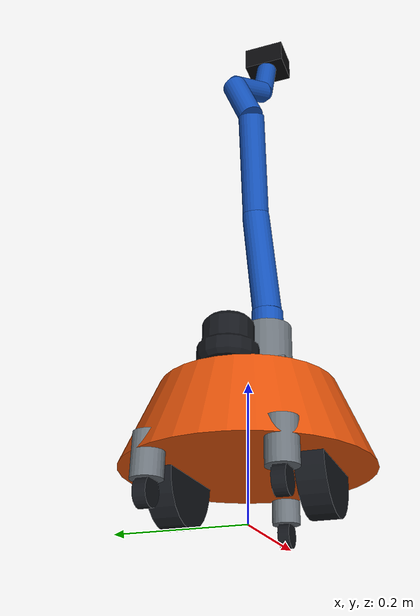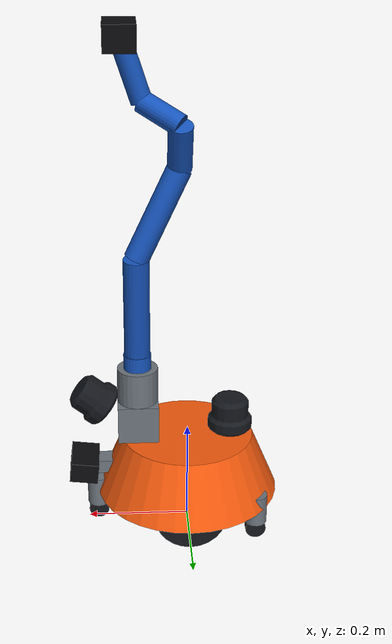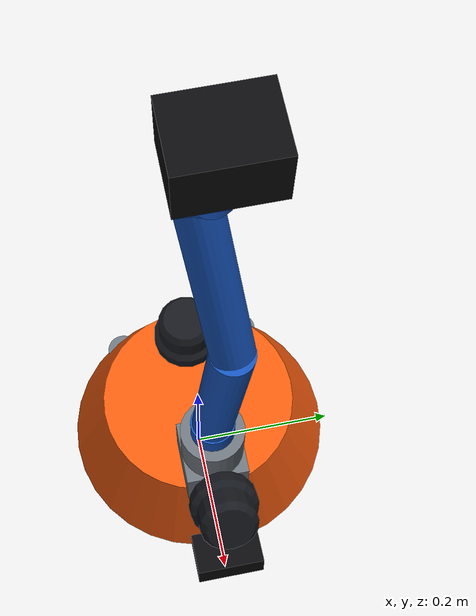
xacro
<?xml version="1.0"?>
<robot name="jvs_mock" xmlns:xacro="http://www.ros.org/wiki/xacro">
  <xacro:arg name="controllers_file" default="$(find jvs_mock)/config/jarvis_controllers.yaml"/>
  <xacro:arg name="sim_backend" default="gazebo"/>
  <xacro:arg name="lidar_mode" default="both"/>
  <xacro:property name="arm_mass_scale" value="0.6"/>
  <xacro:property name="base_height" value="0.12"/>
  <xacro:property name="base_top_radius" value="0.13"/>
  <xacro:property name="base_bottom_radius" value="0.18"/>
  <xacro:include filename="$(find jvs_mock)/urdf/materials.xacro"/>
  <xacro:include filename="$(find jvs_mock)/urdf/ros2_control.xacro"/>
  <xacro:include filename="$(find jvs_mock)/urdf/gazebo.xacro"/>

  <!-- Base origin is on the ground plane. The top keeps the target 0.13 m
       radius, while the wider lower edge overlaps all three caster posts. -->
  <link name="base_link">
    <xacro:frustum_body bottom_radius="${base_bottom_radius}"
      top_radius="${base_top_radius}" length="${base_height}" mass="31.772322"
      origin_z="0.13" mesh_filename="$(find jvs_mock)/meshes/base_frustum.stl"
      material="jvs_orange"/>
  </link>

  <link name="left_wheel_link">
    <xacro:cylinder_body radius="0.07" length="0.04" mass="0.35"
      origin_xyz="0 0 0" origin_rpy="1.57079632679 0 0" material="jvs_dark"/>
  </link>
  <joint name="left_wheel_joint" type="continuous">
    <parent link="base_link"/><child link="left_wheel_link"/>
    <origin xyz="0 0.105 0.070" rpy="0 0 0"/>
    <axis xyz="0 1 0"/>
    <limit effort="20.0" velocity="15.0"/>
    <dynamics damping="0.02" friction="0.01"/>
  </joint>

  <link name="right_wheel_link">
    <xacro:cylinder_body radius="0.07" length="0.04" mass="0.35"
      origin_xyz="0 0 0" origin_rpy="1.57079632679 0 0" material="jvs_dark"/>
  </link>
  <joint name="right_wheel_joint" type="continuous">
    <parent link="base_link"/><child link="right_wheel_link"/>
    <origin xyz="0 -0.105 0.070" rpy="0 0 0"/>
    <axis xyz="0 1 0"/>
    <limit effort="20.0" velocity="15.0"/>
    <dynamics damping="0.02" friction="0.01"/>
  </joint>

  <xacro:macro name="passive_caster" params="name x y">
    <link name="${name}_swivel_link">
      <xacro:cylinder_body radius="0.022" length="0.06" mass="0.04"
        origin_xyz="0 0 0.01" origin_rpy="0 0 0" material="jvs_gray"/>
    </link>
    <joint name="${name}_swivel_joint" type="continuous">
      <parent link="base_link"/><child link="${name}_swivel_link"/>
      <origin xyz="${x} ${y} 0.055" rpy="0 0 0"/>
      <axis xyz="0 0 1"/>
      <limit effort="0.2" velocity="20.0"/>
      <dynamics damping="0.01" friction="0.002"/>
    </joint>
    <link name="${name}_wheel_link">
      <xacro:cylinder_body radius="0.02" length="0.018" mass="0.08"
        origin_xyz="0 0 0" origin_rpy="1.57079632679 0 0" material="jvs_dark"/>
    </link>
    <joint name="${name}_wheel_joint" type="continuous">
      <parent link="${name}_swivel_link"/><child link="${name}_wheel_link"/>
      <origin xyz="0 0 -0.035" rpy="0 0 0"/>
      <axis xyz="0 1 0"/>
      <limit effort="0.2" velocity="50.0"/>
      <dynamics damping="0.002" friction="0.001"/>
    </joint>
    <xacro:if value="${'$(arg sim_backend)' == 'gazebo'}">
      <gazebo reference="${name}_wheel_link">
        <mu1>0.02</mu1><mu2>0.02</mu2>
      </gazebo>
    </xacro:if>
  </xacro:macro>
  <xacro:passive_caster name="front_caster" x="0.180" y="0"/>
  <xacro:passive_caster name="rear_left_caster" x="-0.131" y="0.089"/>
  <xacro:passive_caster name="rear_right_caster" x="-0.131" y="-0.089"/>

  <!-- Bridge the chassis top (0.19) to the unchanged neck origin (0.266). -->
  <link name="arm_pedestal_link">
    <xacro:box_body size_x="0.080" size_y="0.080" size_z="0.076" mass="0.35"
      origin_xyz="0 0 0" origin_rpy="0 0 0" material="jvs_gray"/>
  </link>
  <joint name="arm_pedestal_joint" type="fixed">
    <parent link="base_link"/><child link="arm_pedestal_link"/>
    <origin xyz="0.098 0 0.228" rpy="0 0 0"/>
  </joint>

  <!-- Support the body camera without changing its calibrated frame. -->
  <link name="rgbd_mount_link">
    <xacro:box_body size_x="0.072" size_y="0.040" size_z="0.026" mass="0.06"
      origin_xyz="0 0 0" origin_rpy="0 0 0" material="jvs_gray"/>
  </link>
  <joint name="rgbd_mount_joint" type="fixed">
    <parent link="base_link"/><child link="rgbd_mount_link"/>
    <origin xyz="0.156 0 0.125" rpy="0 0 0"/>
  </joint>

  <link name="lidar_link">
    <visual>
      <origin xyz="0 0 0" rpy="0 0 0"/>
      <geometry>
        <!-- The local STL is authored in millimetres. -->
        <mesh filename="$(find jvs_mock)/meshes/jarvis_lidar.stl"
          scale="0.001 0.001 0.001"/>
      </geometry>
      <material name="jvs_dark"/>
    </visual>
  </link>
  <joint name="lidar_joint" type="fixed">
    <parent link="base_link"/><child link="lidar_link"/>
    <origin xyz="-0.085 0 0.235" rpy="0 0 0"/>
  </joint>

  <!-- Restore the original front sensor extrinsic; keep the rear TF/topic
       unchanged for existing consumers. Both sensors have distinct frames. -->
  <link name="front_lidar_link">
    <visual>
      <origin xyz="0 0 0" rpy="0 0 0"/>
      <geometry>
        <mesh filename="$(find jvs_mock)/meshes/jarvis_lidar.stl"
          scale="0.001 0.001 0.001"/>
      </geometry>
      <material name="jvs_dark"/>
    </visual>
  </link>
  <joint name="front_lidar_joint" type="fixed">
    <parent link="base_link"/><child link="front_lidar_link"/>
    <origin xyz="0.190 0 0.274" rpy="0 0.898844565 0"/>
  </joint>

  <!-- Neck mounting and six revolute joints. Joint rpy values are all zero. -->
  <link name="neck_base_link">
    <xacro:cylinder_body radius="0.04" length="0.07" mass="${0.30 * arm_mass_scale}"
      origin_xyz="0 0 0.035" origin_rpy="0 0 0" material="jvs_gray"/>
  </link>
  <joint name="neck_base_joint" type="fixed">
    <parent link="base_link"/><child link="neck_base_link"/>
    <origin xyz="0.098 0 0.266" rpy="0 0 0"/>
  </joint>

  <link name="link1">
    <xacro:cylinder_body radius="0.027" length="0.10" mass="${0.28 * arm_mass_scale}"
      origin_xyz="0 0 0.05" origin_rpy="0 0 0" material="jvs_blue"/>
  </link>
  <joint name="joint1" type="revolute">
    <parent link="neck_base_link"/><child link="link1"/>
    <origin xyz="0 0 0" rpy="0 0 0"/><axis xyz="0 0 1"/>
    <limit lower="-1.3962634016" upper="1.3962634016" effort="10.0" velocity="1.0"/>
    <dynamics damping="0.15" friction="0.02"/>
  </joint>

  <link name="link2">
    <xacro:cylinder_body radius="0.025" length="0.205218" mass="${0.35 * arm_mass_scale}"
      origin_xyz="0 0.00975 0.102145" origin_rpy="0 0.0952 1.57079632679" material="jvs_blue"/>
  </link>
  <joint name="joint2" type="revolute">
    <parent link="link1"/><child link="link2"/>
    <origin xyz="0 0 0.10" rpy="0 0 0"/><axis xyz="0 1 0"/>
    <limit lower="-1.18682389136" upper="0.698131700798" effort="10.0" velocity="1.0"/>
    <dynamics damping="0.15" friction="0.02"/>
  </joint>

  <link name="link3">
    <xacro:cylinder_body radius="0.024" length="0.188000" mass="${0.32 * arm_mass_scale}"
      origin_xyz="-0.041 -0.010 0.084" origin_rpy="0 0.465 -2.902" material="jvs_blue"/>
  </link>
  <joint name="joint3" type="revolute">
    <parent link="link2"/><child link="link3"/>
    <origin xyz="0 0.0195 0.20429" rpy="0 0 0"/><axis xyz="0 1 0"/>
    <limit lower="-0.523598775598" upper="2.61799387799" effort="10.0" velocity="1.0"/>
    <dynamics damping="0.15" friction="0.02"/>
  </joint>

  <link name="link4">
    <xacro:cylinder_body radius="0.023" length="0.094340" mass="${0.24 * arm_mass_scale}"
      origin_xyz="0 0.017 0.044" origin_rpy="0 0.369 1.57079632679" material="jvs_blue"/>
  </link>
  <joint name="joint4" type="revolute">
    <parent link="link3"/><child link="link4"/>
    <origin xyz="-0.082 -0.020 0.168" rpy="0 0 0"/><axis xyz="0 0 1"/>
    <limit lower="-1.57079632679" upper="1.57079632679" effort="8.0" velocity="1.2"/>
    <dynamics damping="0.12" friction="0.02"/>
  </joint>

  <link name="link5">
    <xacro:cylinder_body radius="0.021" length="0.084528" mass="${0.50 * arm_mass_scale}"
      origin_xyz="0.034 -0.0175 0.018" origin_rpy="0 1.130847 -0.475343" material="jvs_blue"/>
  </link>
  <joint name="joint5" type="revolute">
    <parent link="link4"/><child link="link5"/>
    <origin xyz="0 0.034 0.088" rpy="0 0 0"/><axis xyz="0 1 0"/>
    <limit lower="-2.61799387799" upper="0.03490658504" effort="8.0" velocity="1.2"/>
    <dynamics damping="0.12" friction="0.02"/>
  </joint>

  <link name="link6">
    <xacro:cylinder_body radius="0.020" length="0.122540" mass="${0.18 * arm_mass_scale}"
      origin_xyz="0.019 0 0.05825" origin_rpy="0 0.315 0" material="jvs_blue"/>
  </link>
  <joint name="joint6" type="revolute">
    <parent link="link5"/><child link="link6"/>
    <origin xyz="0.068 -0.035 0.036" rpy="0 0 0"/><axis xyz="0 0 1"/>
    <limit lower="-0.698131700798" upper="0.698131700798" effort="6.0" velocity="1.5"/>
    <dynamics damping="0.10" friction="0.01"/>
  </joint>

  <!-- Head camera and REP-103 optical frame (z forward, x right, y down). -->
  <link name="camera_link">
    <xacro:box_body size_x="0.060" size_y="0.080" size_z="0.050" mass="0.12"
      origin_xyz="0 0 0" origin_rpy="0 0 0" material="jvs_camera"/>
  </link>
  <joint name="camera_joint" type="fixed">
    <parent link="link6"/><child link="camera_link"/>
    <origin xyz="0.038 0 0.1165" rpy="0 0 0"/>
  </joint>
  <link name="camera_optical_frame"/>
  <joint name="camera_optical_joint" type="fixed">
    <parent link="camera_link"/><child link="camera_optical_frame"/>
    <origin xyz="0.02 0 0" rpy="-1.57079632679 0 -1.57079632679"/>
  </joint>

  <!-- Independent body-mounted RGBD camera. -->
  <link name="rgbd_link">
    <xacro:box_body size_x="0.055" size_y="0.090" size_z="0.040" mass="0.14"
      origin_xyz="0 0 0" origin_rpy="0 0 0" material="jvs_camera"/>
  </link>
  <joint name="rgbd_joint_fixed" type="fixed">
    <parent link="base_link"/><child link="rgbd_link"/>
    <origin xyz="0.207 0 0.125" rpy="0 -0.118464 0"/>
  </joint>
  <link name="rgbd_optical_frame"/>
  <joint name="rgbd_optical_joint" type="fixed">
    <parent link="rgbd_link"/><child link="rgbd_optical_frame"/>
    <origin xyz="0 0 0" rpy="-1.57079632679 0 -1.57079632679"/>
  </joint>

  <xacro:if value="${'$(arg sim_backend)' == 'gazebo'}">
    <xacro:jvs_ros2_control/>
    <xacro:jvs_gazebo controllers_file="$(arg controllers_file)"/>
  </xacro:if>
</robot>

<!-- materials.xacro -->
<robot xmlns:xacro="http://www.ros.org/wiki/xacro">
  <material name="jvs_orange"><color rgba="0.95 0.35 0.05 1.0"/></material>
  <material name="jvs_dark"><color rgba="0.08 0.09 0.11 1.0"/></material>
  <material name="jvs_gray"><color rgba="0.42 0.45 0.48 1.0"/></material>
  <material name="jvs_blue"><color rgba="0.08 0.32 0.72 1.0"/></material>
  <material name="jvs_camera"><color rgba="0.04 0.04 0.05 1.0"/></material>

  <!-- Most links use primitives; the tapered base uses one local convex STL. -->
  <xacro:macro name="frustum_body"
    params="bottom_radius top_radius length mass origin_z mesh_filename material">
    <!-- Exact centroid and principal inertias for a uniform solid conical frustum. -->
    <xacro:property name="frustum_s"
      value="${bottom_radius * bottom_radius + bottom_radius * top_radius + top_radius * top_radius}"/>
    <xacro:property name="frustum_q"
      value="${bottom_radius**4 + bottom_radius**3 * top_radius + bottom_radius**2 * top_radius**2 + bottom_radius * top_radius**3 + top_radius**4}"/>
    <xacro:property name="frustum_u_bar"
      value="${(bottom_radius**2 + 2.0 * bottom_radius * top_radius + 3.0 * top_radius**2) / (4.0 * frustum_s)}"/>
    <xacro:property name="frustum_u2"
      value="${(bottom_radius**2 + 3.0 * bottom_radius * top_radius + 6.0 * top_radius**2) / (10.0 * frustum_s)}"/>
    <inertial>
      <origin xyz="0 0 ${origin_z - length / 2.0 + length * frustum_u_bar}" rpy="0 0 0"/>
      <mass value="${mass}"/>
      <inertia
        ixx="${mass * (3.0 * frustum_q / (20.0 * frustum_s) + length**2 * (frustum_u2 - frustum_u_bar**2))}"
        ixy="0" ixz="0"
        iyy="${mass * (3.0 * frustum_q / (20.0 * frustum_s) + length**2 * (frustum_u2 - frustum_u_bar**2))}"
        iyz="0" izz="${mass * 3.0 * frustum_q / (10.0 * frustum_s)}"/>
    </inertial>
    <visual>
      <origin xyz="0 0 ${origin_z}" rpy="0 0 0"/>
      <geometry><mesh filename="${mesh_filename}"/></geometry>
      <material name="${material}"/>
    </visual>
    <collision>
      <origin xyz="0 0 ${origin_z}" rpy="0 0 0"/>
      <geometry><mesh filename="${mesh_filename}"/></geometry>
    </collision>
  </xacro:macro>

  <xacro:macro name="cylinder_body" params="radius length mass origin_xyz origin_rpy material">
    <inertial>
      <origin xyz="${origin_xyz}" rpy="${origin_rpy}"/>
      <mass value="${mass}"/>
      <inertia
        ixx="${mass * (3.0 * radius * radius + length * length) / 12.0}" ixy="0" ixz="0"
        iyy="${mass * (3.0 * radius * radius + length * length) / 12.0}" iyz="0"
        izz="${mass * radius * radius / 2.0}"/>
    </inertial>
    <visual>
      <origin xyz="${origin_xyz}" rpy="${origin_rpy}"/>
      <geometry><cylinder radius="${radius}" length="${length}"/></geometry>
      <material name="${material}"/>
    </visual>
    <collision>
      <origin xyz="${origin_xyz}" rpy="${origin_rpy}"/>
      <geometry><cylinder radius="${radius}" length="${length}"/></geometry>
    </collision>
  </xacro:macro>

  <xacro:macro name="box_body" params="size_x size_y size_z mass origin_xyz origin_rpy material">
    <inertial>
      <origin xyz="${origin_xyz}" rpy="${origin_rpy}"/>
      <mass value="${mass}"/>
      <inertia
        ixx="${mass * (size_y * size_y + size_z * size_z) / 12.0}" ixy="0" ixz="0"
        iyy="${mass * (size_x * size_x + size_z * size_z) / 12.0}" iyz="0"
        izz="${mass * (size_x * size_x + size_y * size_y) / 12.0}"/>
    </inertial>
    <visual>
      <origin xyz="${origin_xyz}" rpy="${origin_rpy}"/>
      <geometry><box size="${size_x} ${size_y} ${size_z}"/></geometry>
      <material name="${material}"/>
    </visual>
    <collision>
      <origin xyz="${origin_xyz}" rpy="${origin_rpy}"/>
      <geometry><box size="${size_x} ${size_y} ${size_z}"/></geometry>
    </collision>
  </xacro:macro>

  <xacro:macro name="sphere_body" params="radius mass material">
    <inertial>
      <mass value="${mass}"/>
      <inertia ixx="${0.4 * mass * radius * radius}" ixy="0" ixz="0"
               iyy="${0.4 * mass * radius * radius}" iyz="0"
               izz="${0.4 * mass * radius * radius}"/>
    </inertial>
    <visual>
      <geometry><sphere radius="${radius}"/></geometry>
      <material name="${material}"/>
    </visual>
    <collision><geometry><sphere radius="${radius}"/></geometry></collision>
  </xacro:macro>
</robot>
